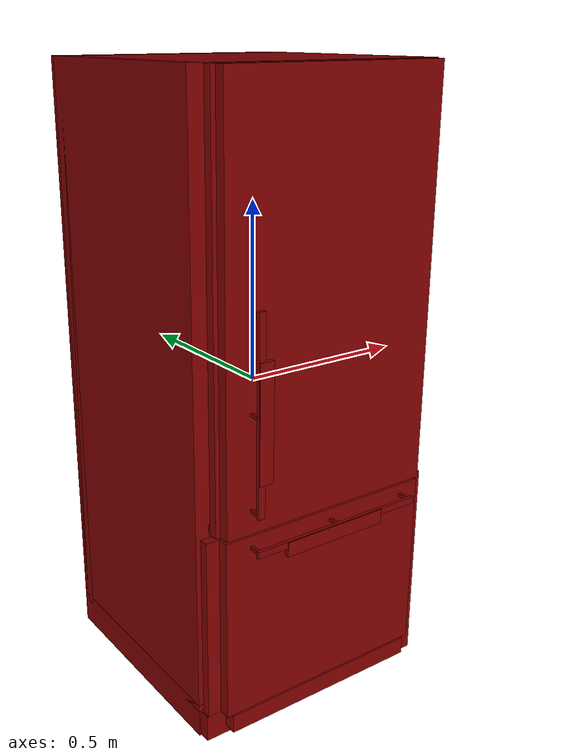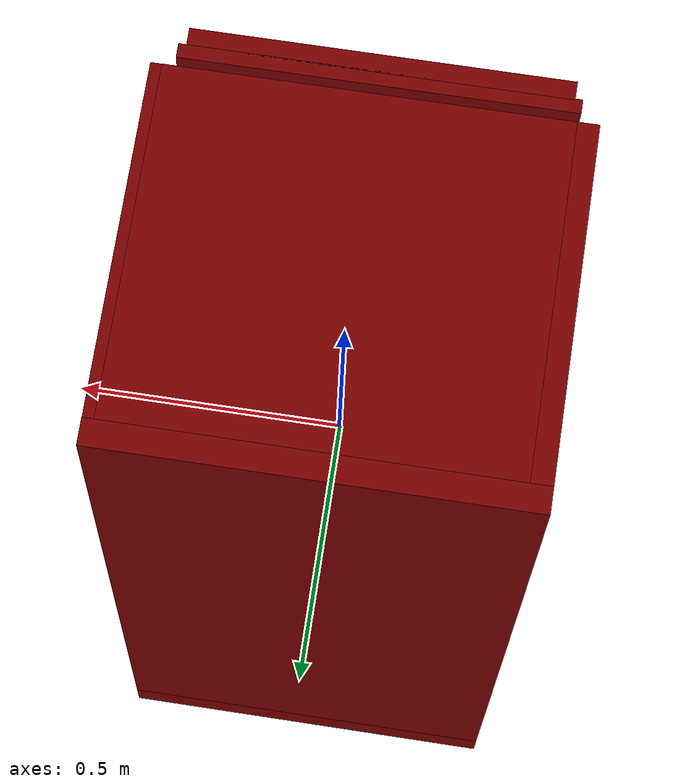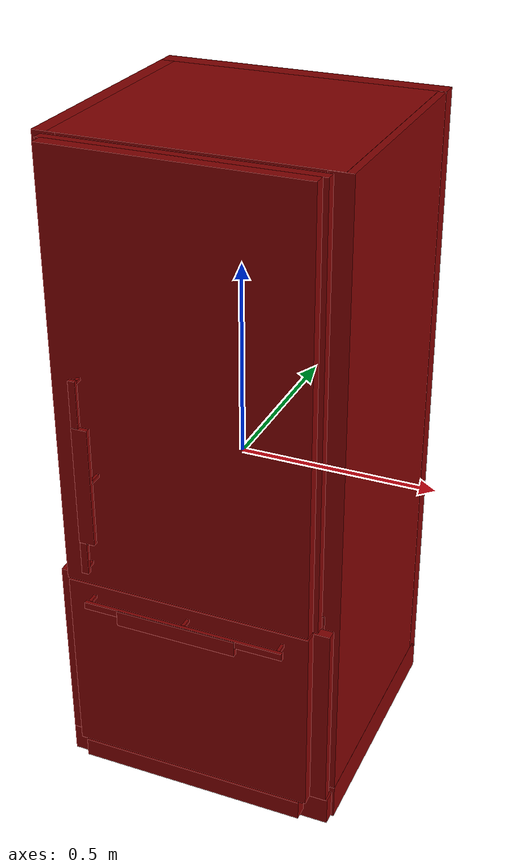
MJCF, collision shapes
<mujoco model="model">
  <compiler angle="radian"/>
  <asset>
    <mesh file="visuals/Body001.obj" name="Body001_vis"/>
    <mesh file="visuals/Body001_Clear.obj" name="Body001_Clear_vis"/>
    <mesh file="visuals/Door001.obj" name="Door001_vis"/>
    <mesh file="visuals/Door001_Clear.obj" name="Door001_Clear_vis"/>
    <mesh file="visuals/Drawer001.obj" name="Drawer001_vis"/>
    <texture file="visuals/T_BC001.png" name="Body001_material" type="2d"/>
    <material name="Body001_material" rgba="1 1 1 1.0" texture="Body001_material" shininess="0.4472135901451111" specular="1"/>
    <texture file="visuals/T_BC001.png" name="Body001_Clear_material" type="2d"/>
    <material name="Body001_Clear_material" rgba="1 1 1 0.684210479259491" texture="Body001_Clear_material" shininess="0.4472135901451111" specular="0.3103448502657381"/>
    <texture file="visuals/T_BC001.png" name="Door001_material" type="2d"/>
    <material name="Door001_material" rgba="1 1 1 1.0" texture="Door001_material" shininess="0.4472135901451111" specular="1"/>
    <texture file="visuals/T_BC001.png" name="Door001_Clear_material" type="2d"/>
    <material name="Door001_Clear_material" rgba="1 1 1 0.684210479259491" texture="Door001_Clear_material" shininess="0.4472135901451111" specular="0.3103448502657381"/>
    <texture file="visuals/T_BC001.png" name="Drawer001_material" type="2d"/>
    <material name="Drawer001_material" rgba="1 1 1 1.0" texture="Drawer001_material" shininess="0.4472135901451111" specular="0.3103448502657381"/>
  </asset>
  <default>
    <default class="visual">
      <geom conaffinity="0" contype="0" group="1" type="mesh"/>
    </default>
    <default class="collision">
      <geom group="0" rgba="0.5 0 0 0.5"/>
    </default>
    <default class="spawn">
      <geom group="0" rgba="1 1 1 0.5" contype="0" conaffinity="0"/>
      <site group="0" rgba="1 1 1 0.5"/>
    </default>
    <default class="region">
      <geom group="1" conaffinity="0" contype="0" rgba="0 1 0 0"/>
    </default>
  </default>
  <worldbody>
    <body>
      <body name="object">
        <geom mesh="Body001_vis" type="mesh" solimp="0.998 0.998 0.001" solref="0.001 1" density="100" friction="0.95 0.3 0.1" class="visual" material="Body001_material"/>
        <geom class="collision" type="box" pos="0.009043323807418346 0.05083682760596275 0.8287261128425598" size="0.34029099345207214 0.3268563151359558 0.027132852002978325" quat="1.0 0.0 0.0 0.0"/>
        <geom class="collision" type="box" pos="-0.3388930559158325 0.05083683505654335 0.03808841109275818" size="0.029288513585925102 0.326856404542923 0.8177698254585266" quat="1.0 0.0 0.0 0.0"/>
        <geom class="collision" type="box" pos="0.338745653629303 0.05083683878183365 0.03774818405508995" size="0.029330000281333923 0.3268566429615021 0.817430317401886" quat="1.0 0.0 0.0 0.0"/>
        <geom class="collision" type="box" pos="5.748856347054243e-05 0.36716902256011963 0.03808841109275818" size="0.36823904514312744 0.02338751219213009 0.8177712559700012" quat="1.0 0.0 0.0 0.0"/>
        <geom class="collision" type="box" pos="5.7468794693704695e-05 0.05670463666319847 -0.8077386617660522" size="0.36823904514312744 0.3338519036769867 0.04740443825721741" quat="1.0 0.0 0.0 0.0"/>
        <geom class="collision" type="box" pos="-0.0013219835236668587 0.004995355382561684 -0.8137256503105164" size="0.36294132471084595 0.3149847984313965 0.03769071027636528" quat="1.0 0.0 0.0 0.0"/>
        <geom class="collision" type="box" pos="-0.004369916394352913 -0.03211843967437744 -0.8017321825027466" size="0.30200138688087463 0.3148287534713745 0.02569722943007946" quat="1.0 0.0 0.0 0.0"/>
        <geom class="collision" type="box" pos="0.00019864225760102272 0.03361191228032112 -0.25786349177360535" size="0.32931435108184814 0.3118056058883667 0.024508919566869736" quat="1.0 0.0 0.0 0.0"/>
        <geom class="collision" type="box" pos="0.00019864225760102272 0.0863306075334549 0.47808361053466797" size="0.32931384444236755 0.2657011151313782 0.006528572645038366" quat="1.0 0.0 0.0 0.0"/>
        <geom class="collision" type="box" pos="0.3056536316871643 0.08237583935260773 0.06986159831285477" size="0.005801303777843714 0.25671061873435974 0.008075063116848469" quat="1.0 0.0 0.0 0.0"/>
        <geom class="collision" type="box" pos="-0.3056296408176422 0.08237583935260773 0.06986159831285477" size="0.005801303777843714 0.25671061873435974 0.008075063116848469" quat="1.0 0.0 0.0 0.0"/>
        <geom class="collision" type="box" pos="0.3056536316871643 0.08237583935260773 0.4610927700996399" size="0.005801303777843714 0.25671061873435974 0.008075063116848469" quat="1.0 0.0 0.0 0.0"/>
        <geom class="collision" type="box" pos="-0.3056296408176422 0.08237583935260773 0.4610927700996399" size="0.005801303777843714 0.25671061873435974 0.008075063116848469" quat="1.0 0.0 0.0 0.0"/>
        <body name="Body001_Clear">
          <geom mesh="Body001_Clear_vis" type="mesh" solimp="0.998 0.998 0.001" solref="0.001 1" density="100" friction="0.95 0.3 0.1" class="visual" material="Body001_Clear_material"/>
          <geom class="collision" type="box" pos="0.0036785202100872993 0.08149967342615128 0.08599872142076492" size="0.3119160830974579 0.2620874047279358 0.006721177604049444" quat="1.0 0.0 0.0 0.0"/>
        </body>
        <body name="Door001">
          <joint axis="0.0 0.0 1.0" pos="0.336078941822052 -0.3208591043949127 0.17236751317977905" limited="true" name="Door001_joint" range="0.0 1.5707963267948966" type="hinge" damping="1" frictionloss="1" armature=".01" stiffness="0.05"/>
          <geom mesh="Door001_vis" type="mesh" solimp="0.998 0.998 0.001" solref="0.001 1" density="100" friction="0.95 0.3 0.1" class="visual" material="Door001_material"/>
          <geom class="collision" type="box" pos="-0.003472934477031231 -0.3044854700565338 0.30110591650009155" size="0.332180380821228 0.012597385793924332 0.5540650486946106" quat="1.0 0.0 0.0 0.0"/>
          <geom class="collision" type="box" pos="-0.003819168545305729 -0.33124884963035583 0.30110591650009155" size="0.3194584548473358 0.016279790550470352 0.5540650486946106" quat="1.0 0.0 0.0 0.0"/>
          <geom class="collision" type="box" pos="-0.23603764176368713 -0.38361209630966187 0.05016902834177017" size="0.0203431136906147 0.006301120389252901 0.15594571828842163" quat="1.0 0.0 0.0 0.0"/>
          <geom class="collision" type="box" pos="-0.24776116013526917 -0.38234031200408936 0.06552494317293167" size="0.009289528243243694 0.005029338411986828 0.26117438077926636" quat="1.0 0.0 0.0 0.0"/>
          <geom class="collision" type="box" pos="-0.21851930022239685 -0.36358121037483215 0.065830759704113" size="0.004091715440154076 0.01663646660745144 0.004091715440154076" quat="1.0 0.0 0.0 0.0"/>
          <geom class="collision" type="box" pos="-0.2503061294555664 -0.36358121037483215 0.065830759704113" size="0.0040917107835412025 0.016636447980999947 0.0040917107835412025" quat="1.0 0.0 0.0 0.0"/>
          <geom class="collision" type="box" pos="-0.2503061592578888 -0.36358121037483215 -0.18760421872138977" size="0.004091705661267042 0.016636427491903305 0.004091705661267042" quat="1.0 0.0 0.0 0.0"/>
          <geom class="collision" type="box" pos="-0.25076279044151306 -0.36358121037483215 0.31299611926078796" size="0.004091701004654169 0.016636408865451813 0.004091701004654169" quat="1.0 0.0 0.0 0.0"/>
          <body name="Door001_Clear">
            <geom mesh="Door001_Clear_vis" type="mesh" solimp="0.998 0.998 0.001" solref="0.001 1" density="100" friction="0.95 0.3 0.1" class="visual" material="Door001_Clear_material"/>
            <geom class="collision" type="box" pos="0.0016738609410822392 -0.23115472495555878 0.6491342782974243" size="0.24514779448509216 0.04812924936413765 0.002828010357916355" quat="1.0 0.0 0.0 0.0"/>
            <geom class="collision" type="box" pos="0.001491784816607833 -0.23134592175483704 0.46487146615982056" size="0.24514779448509216 0.04812924936413765 0.0028281258419156075" quat="1.0 0.0 0.0 0.0"/>
            <geom class="collision" type="box" pos="0.001491784816607833 -0.23134592175483704 0.24359279870986938" size="0.24514779448509216 0.04812924936413765 0.0028279644902795553" quat="1.0 0.0 0.0 0.0"/>
            <geom class="collision" type="box" pos="0.0016743817832320929 -0.1834477037191391 0.6786073446273804" size="0.24513356387615204 0.003358532441779971 0.027968809008598328" quat="1.0 0.0 0.0 0.0"/>
            <geom class="collision" type="box" pos="0.001492934999987483 -0.18363890051841736 0.49434366822242737" size="0.24513381719589233 0.0033585350029170513 0.0279687512665987" quat="1.0 0.0 0.0 0.0"/>
            <geom class="collision" type="box" pos="0.0014923056587576866 -0.18363890051841736 0.27306485176086426" size="0.24513405561447144 0.003358537796884775 0.027968771755695343" quat="1.0 0.0 0.0 0.0"/>
            <geom class="collision" type="box" pos="0.0016738609410822392 -0.2781522870063782 0.6786073446273804" size="0.24514888226985931 0.0011944178259000182 0.027969827875494957" quat="1.0 0.0 0.0 0.0"/>
            <geom class="collision" type="box" pos="0.001491784816607833 -0.2783434987068176 0.4943440556526184" size="0.24514888226985931 0.0011944178259000182 0.027969829738140106" quat="1.0 0.0 0.0 0.0"/>
            <geom class="collision" type="box" pos="0.001491784816607833 -0.2783434987068176 0.2730652391910553" size="0.24514888226985931 0.0011944178259000182 0.027969826012849808" quat="1.0 0.0 0.0 0.0"/>
            <geom class="collision" type="box" pos="0.24519343674182892 -0.2304575890302658 0.6786073446273804" size="0.002283500973135233 0.04793621972203255 0.027969839051365852" quat="1.0 0.0 0.0 0.0"/>
            <geom class="collision" type="box" pos="0.2450113594532013 -0.23064878582954407 0.4943440556526184" size="0.002283500973135233 0.04793621972203255 0.027969837188720703" quat="1.0 0.0 0.0 0.0"/>
            <geom class="collision" type="box" pos="0.2450113594532013 -0.23064878582954407 0.2730652391910553" size="0.002283500973135233 0.04793621972203255 0.027969839051365852" quat="1.0 0.0 0.0 0.0"/>
            <geom class="collision" type="box" pos="-0.24362261593341827 -0.23076848685741425 0.6786073446273804" size="0.002009796677157283 0.047936297953128815 0.027969839051365852" quat="1.0 0.0 0.0 0.0"/>
            <geom class="collision" type="box" pos="-0.2438046932220459 -0.2309596836566925 0.4943440556526184" size="0.002009796677157283 0.047936297953128815 0.027969837188720703" quat="1.0 0.0 0.0 0.0"/>
            <geom class="collision" type="box" pos="-0.2438046932220459 -0.2309596836566925 0.2730652391910553" size="0.002009796677157283 0.047936297953128815 0.027969839051365852" quat="1.0 0.0 0.0 0.0"/>
          </body>
        </body>
        <body name="Drawer001">
          <joint axis="0.0 -1.0 0.0" pos="0.007033669855445623 -0.32862332463264465 -0.41187500953674316" limited="true" name="Drawer001_joint" range="0.0 0.43" type="slide" damping="1" frictionloss="1" armature=".01" stiffness="0.05"/>
          <geom mesh="Drawer001_vis" type="mesh" solimp="0.998 0.998 0.001" solref="0.001 1" density="100" friction="0.95 0.3 0.1" class="visual" material="Drawer001_material"/>
          <geom class="collision" type="box" pos="-0.0021906900219619274 -0.3009081482887268 -0.5172630548477173" size="0.3597579896450043 0.012597385793924332 0.25634488463401794" quat="1.0 0.0 0.0 0.0"/>
          <geom class="collision" type="box" pos="-0.003819168545305729 -0.32767152786254883 -0.5172630548477173" size="0.3194584548473358 0.016279790550470352 0.25634488463401794" quat="1.0 0.0 0.0 0.0"/>
          <geom class="collision" type="box" pos="-0.01105424389243126 -0.3837423622608185 -0.3053782284259796" size="0.15594571828842163 0.006301120389252901 0.020343100652098656" quat="1.0 0.0 0.0 0.0"/>
          <geom class="collision" type="box" pos="0.004301674664020538 -0.38247057795524597 -0.2936547100543976" size="0.26117438077926636 0.005029338411986828 0.009289508685469627" quat="1.0 0.0 0.0 0.0"/>
          <geom class="collision" type="box" pos="0.004607485607266426 -0.36371147632598877 -0.3228965699672699" size="0.004091773647814989 0.016636701300740242 0.004091773647814989" quat="1.0 0.0 0.0 0.0"/>
          <geom class="collision" type="box" pos="0.004607485607266426 -0.36371147632598877 -0.29110974073410034" size="0.004091768525540829 0.0166366808116436 0.004091768525540829" quat="1.0 0.0 0.0 0.0"/>
          <geom class="collision" type="box" pos="-0.2488274872303009 -0.36371147632598877 -0.29110974073410034" size="0.004091763868927956 0.016636662185192108 0.004091763868927956" quat="1.0 0.0 0.0 0.0"/>
          <geom class="collision" type="box" pos="0.25177282094955444 -0.36371147632598877 -0.2906530797481537" size="0.004091758746653795 0.016636641696095467 0.004091758746653795" quat="1.0 0.0 0.0 0.0"/>
          <geom class="collision" type="box" pos="0.2941632568836212 0.003940756432712078 -0.550811767578125" size="0.011912425979971886 0.30003130435943604 0.2052350640296936" quat="1.0 0.0 0.0 0.0"/>
          <geom class="collision" type="box" pos="-0.2886395752429962 0.003985525108873844 -0.550811767578125" size="0.013694475404918194 0.30007606744766235 0.20523516833782196" quat="1.0 0.0 0.0 0.0"/>
          <geom class="collision" type="box" pos="-0.008176805451512337 0.2928328216075897 -0.550811767578125" size="0.28934913873672485 0.010234303772449493 0.20523527264595032" quat="1.0 0.0 0.0 0.0"/>
          <geom class="collision" type="box" pos="-0.008176805451512337 0.0005150511860847473 -0.7381628155708313" size="0.28934913873672485 0.30308669805526733 0.020016659051179886" quat="1.0 0.0 0.0 0.0"/>
        </body>
        <geom class="region" name="reg_main" type="box" pos="-7.450580596923828e-09 0.02015761286020279 0.0" size="0.36840811371803284 0.37064439058303833 0.8561311364173889"/>
      </body>
    </body>
  </worldbody>
  <actuator>
    <motor name="Door001_joint_actuator" joint="Door001_joint" gear="50"/>
    <motor name="Drawer001_joint_actuator" joint="Drawer001_joint" gear="50"/>
  </actuator>
</mujoco>
